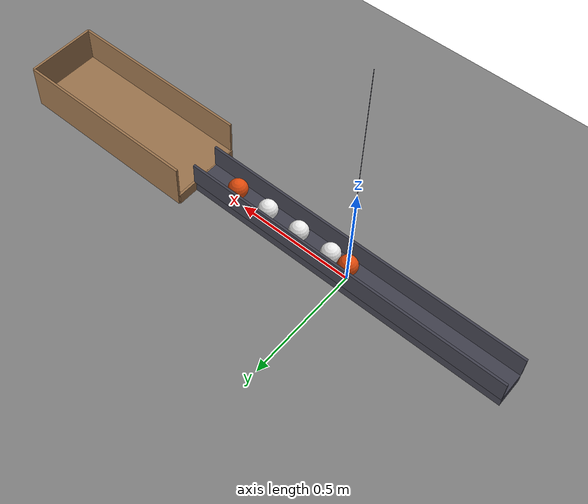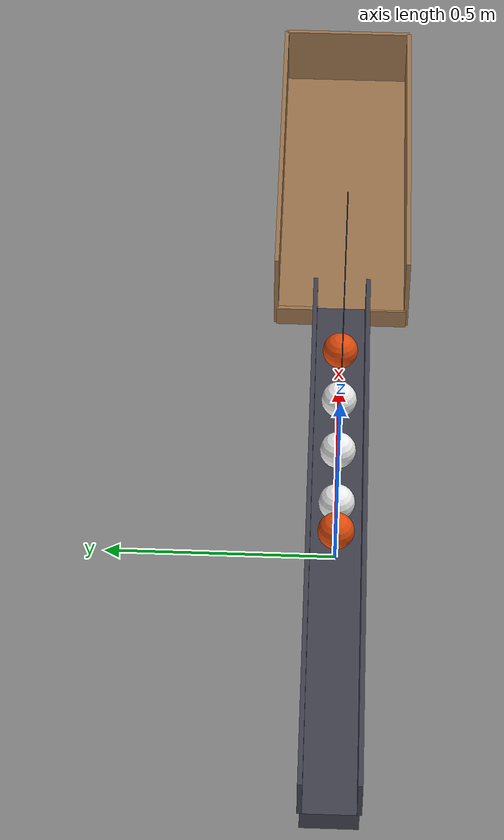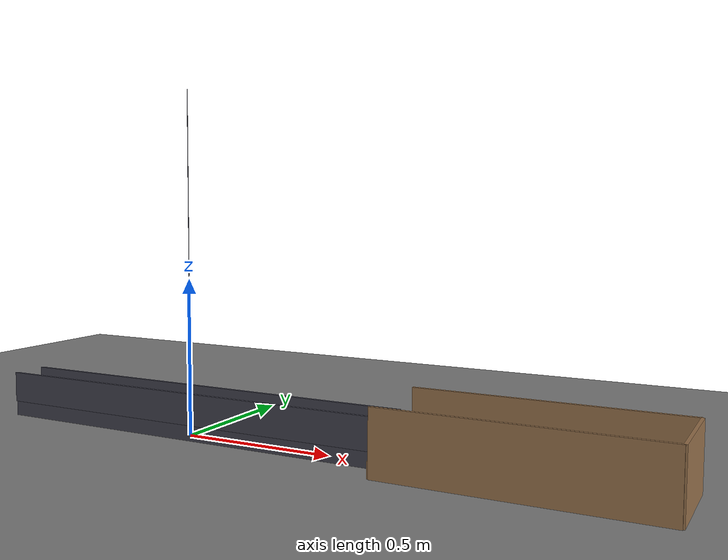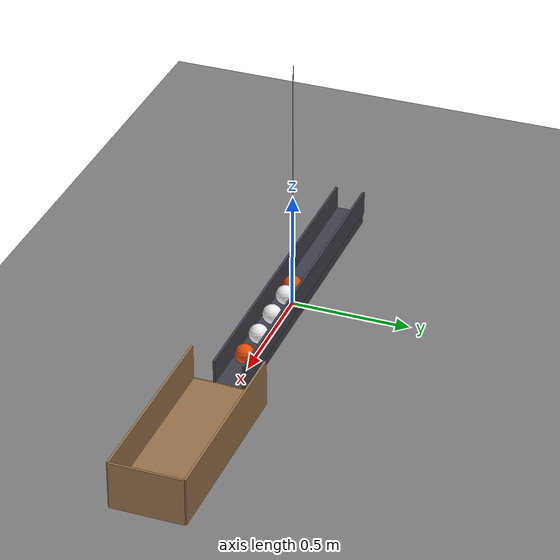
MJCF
<mujoco model="pendulum_impact_chain_into_a_catching_box">
  <compiler angle="radian"/>
  <option timestep="0.002"/>
  <worldbody>
    <geom name="floor" type="plane" size="6 6 0.1" friction="0.8 0.005 0.002"/>
    <body name="rail">
      <geom name="rail" type="box" pos="0 0 0.025" size="0.7 0.06 0.025" friction="0.005 0.0001 1e-05" rgba="0.25 0.25 0.3 1"/>
    </body>
    <body name="left guide">
      <geom name="left guide" type="box" pos="0 0.06 0.1" size="0.7 0.005 0.05" friction="0.005 0.0001 1e-05" rgba="0.25 0.25 0.3 1"/>
    </body>
    <body name="right guide">
      <geom name="right guide" type="box" pos="0 -0.06 0.1" size="0.7 0.005 0.05" friction="0.005 0.0001 1e-05" rgba="0.25 0.25 0.3 1"/>
    </body>
    <body name="pendulum" pos="0 0 1.09">
      <joint name="pendulum_hinge" type="hinge" pos="0 0 0" axis="0 1 0" limited="true" range="-1.39626 1.39626" damping="0"/>
      <geom name="pendulum" type="sphere" pos="0 0 -1" size="0.04" mass="0.1" friction="0.005 0.0001 1e-05" solref="0.01 0.2" rgba="0.9 0.3 0.05 1"/>
      <geom name="pendulum rod" type="capsule" size="0.001" fromto="0 0 0 0 0 -0.96" mass="0.001" contype="0" conaffinity="0" rgba="0.25 0.25 0.3 1"/>
    </body>
    <body name="box">
      <geom name="box_base" type="box" pos="1.1 0 0.025" size="0.4 0.15 0.025" friction="0.8 0.05 0.025" solref="0.01 1" rgba="0.6 0.45 0.3 1"/>
      <geom name="box_near_wall" type="box" pos="0.7 0 0.025" size="0.005 0.15 0.025" friction="0.8 0.05 0.025" solref="0.01 1" rgba="0.6 0.45 0.3 1"/>
      <geom name="box_far_wall" type="box" pos="1.5 0 0.1" size="0.005 0.15 0.1" friction="0.8 0.05 0.025" solref="0.01 1" rgba="0.6 0.45 0.3 1"/>
      <geom name="box_left_wall" type="box" pos="1.1 0.15 0.1" size="0.4 0.005 0.1" friction="0.8 0.05 0.025" solref="0.01 1" rgba="0.6 0.45 0.3 1"/>
      <geom name="box_right_wall" type="box" pos="1.1 -0.15 0.1" size="0.4 0.005 0.1" friction="0.8 0.05 0.025" solref="0.01 1" rgba="0.6 0.45 0.3 1"/>
    </body>
    <body name="ball1" pos="0.08 0 0.09">
      <freejoint/>
      <geom name="ball1" type="sphere" pos="0 0 0" size="0.04" mass="0.1" condim="6" friction="0.005 0.0001 1e-05" solref="0.01 0.2" rgba="0.95 0.95 0.95 1"/>
    </body>
    <body name="ball2" pos="0.23 0 0.09">
      <freejoint/>
      <geom name="ball2" type="sphere" pos="0 0 0" size="0.04" mass="0.1" condim="6" friction="0.005 0.0001 1e-05" solref="0.01 0.2" rgba="0.95 0.95 0.95 1"/>
    </body>
    <body name="ball3" pos="0.38 0 0.09">
      <freejoint/>
      <geom name="ball3" type="sphere" pos="0 0 0" size="0.04" mass="0.1" condim="6" friction="0.005 0.0001 1e-05" solref="0.01 0.2" rgba="0.95 0.95 0.95 1"/>
    </body>
    <body name="ball4" pos="0.53 0 0.09">
      <freejoint/>
      <geom name="ball4" type="sphere" pos="0 0 0" size="0.04" mass="0.1" condim="6" friction="0.005 0.0001 1e-05" solref="0.01 0.2" rgba="0.9 0.3 0.05 1"/>
    </body>
  </worldbody>
  <keyframe>
    <key name="start" qpos="1.0472 0.08 0 0.09 1 0 0 0 0.23 0 0.09 1 0 0 0 0.38 0 0.09 1 0 0 0 0.53 0 0.09 1 0 0 0" qvel="0 0 0 0 0 0 0 0 0 0 0 0 0 0 0 0 0 0 0 0 0 0 0 0 0"/>
  </keyframe>
</mujoco>
